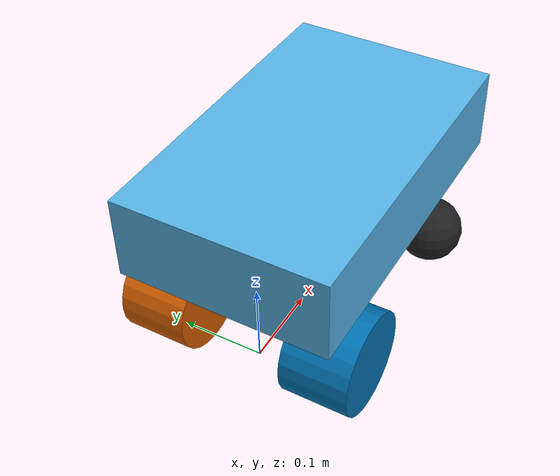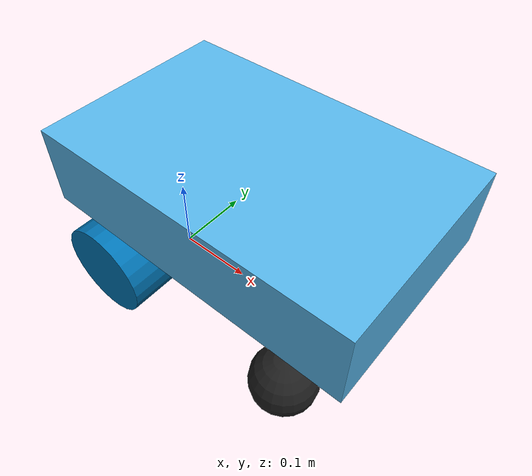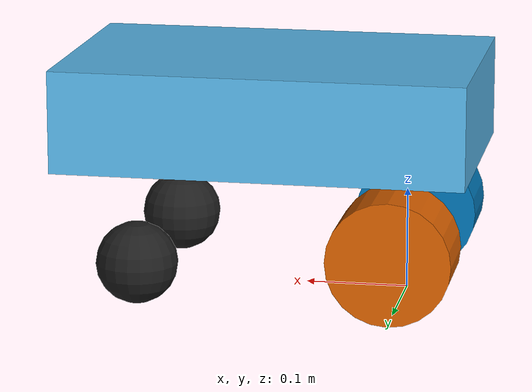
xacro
<?xml version="1.0"?>
<robot xmlns:xacro="http://www.ros.org/wiki/xacro" name="rtklawnmower">

    <!-- base_footprint is a fictitious link(frame) that is on the ground right below base_link origin -->
    <link name="base_footprint" />
    <joint name="base_footprint_joint" type="fixed">
      <parent link="base_footprint"/>
      <child link="base_link" />
      <origin xyz="0 0 0.06" rpy="0 0 0" />
    </joint>

    <!-- chassis is in base_link-->
    <xacro:include filename="$(find rtklm_description)/urdf/chassis.xacro" />
    <xacro:chassis length="0.40" width="0.25" height="0.10" mass="4" offset="0.13 0.00 0.12" />

    <!-- IMU -->
    <xacro:include filename="$(find rtklm_description)/urdf/imu.xacro" />
    <xacro:imu length="0.03" width="0.02" height="0.01" mass="0.01" joint_offset="0.00 0.00 0.08" />

    <!-- GPS -->
    <xacro:include filename="$(find rtklm_description)/urdf/gps.xacro" />
    <xacro:gps length="0.05" width="0.05" height="0.02" mass="0.05" joint_offset="0.22 0.00 0.12" />

    <!-- differential drive wheels -->
    <xacro:include filename="$(find rtklm_description)/urdf/wheel.xacro" />
    <xacro:wheel prefix="right" radius="0.06" length="0.08" mass="0.5" joint_offset="0.0 -0.1 0.0" />
    <xacro:wheel prefix="left"  radius="0.06" length="0.08" mass="0.5" joint_offset="0.0  0.1 0.0" />

    <!-- caster wheels -->
    <xacro:include filename="$(find rtklm_description)/urdf/casterwheel.xacro" />
    <xacro:casterwheel prefix="right" radius="0.04" mass="0.1" joint_offset="0.25 -0.10 -0.02" />
    <xacro:casterwheel prefix="left"  radius="0.04" mass="0.1" joint_offset="0.25  0.10 -0.02" />

</robot>

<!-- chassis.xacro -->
<robot xmlns:xacro="http://www.ros.org/wiki/xacro" name="rtklawnmower">

  <xacro:macro name="chassis" params="length width height mass offset">
    <link name="base_link">
        <visual>
            <origin xyz="${offset}" rpy="0 0 0"/>
            <geometry>
                <box size="${length} ${width} ${height}"/>
            </geometry>
        </visual>
        <collision>
            <origin xyz="${offset}" rpy="0 0 0"/>
            <geometry>
                <box size="${length} ${width} ${height}"/>
            </geometry>
        </collision>
        <inertial>
            <origin xyz="${offset}" rpy="0 0 0"/>
            <mass value="${mass}"/>
            <inertia ixx="${(1/12) * mass * (width*width + height*height)}" ixy="0.0" ixz="0.0"
                     iyy="${(1/12) * mass * (length*length + height*height)}" iyz="0.0"
                     izz="${(1/12) * mass * (length*length + width*width)}" />
        </inertial>
    </link>

  </xacro:macro>
</robot>

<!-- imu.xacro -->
<robot xmlns:xacro="http://www.ros.org/wiki/xacro" name="rtklawnmower">
  <xacro:macro name="imu" params="length width height mass joint_offset">
    <link name="imu_link">
        <visual>
            <origin xyz="0 0 0" rpy="0 0 0"/>
            <geometry>
                <box size="${length} ${width} ${height}"/>
            </geometry>
        </visual>
        <collision>
            <origin xyz="0 0 0" rpy="0 0 0"/>
            <geometry>
                <box size="${length} ${width} ${height}"/>
            </geometry>
        </collision>
        <inertial>
            <origin xyz="0 0 0" rpy="0 0 0"/>
            <mass value="${mass}"/>
            <inertia ixx="${(1/12) * mass * (width*width + height*height)}" ixy="0.0" ixz="0.0"
                     iyy="${(1/12) * mass * (length*length + height*height)}" iyz="0.0"
                     izz="${(1/12) * mass * (length*length + width*width)}" />
        </inertial>
    </link>

    <joint name="imu_joint" type="fixed">
        <origin xyz="${joint_offset}" rpy="0 0 0"/>
        <parent link="base_link"/>
        <child link="imu_link"/>
    </joint>

  </xacro:macro>
</robot>

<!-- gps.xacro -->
<robot xmlns:xacro="http://www.ros.org/wiki/xacro" name="rtklawnmower">
  <xacro:macro name="gps" params="length width height mass joint_offset">
    <link name="gps_link">
        <visual>
            <origin xyz="0 0 0" rpy="0 0 0"/>
            <geometry>
                <box size="${length} ${width} ${height}"/>
            </geometry>
        </visual>
        <collision>
            <origin xyz="0 0 0" rpy="0 0 0"/>
            <geometry>
                <box size="${length} ${width} ${height}"/>
            </geometry>
        </collision>
        <inertial>
            <origin xyz="0 0 0" rpy="0 0 0"/>
            <mass value="${mass}"/>
            <inertia ixx="${(1/12) * mass * (width*width + height*height)}" ixy="0.0" ixz="0.0"
                     iyy="${(1/12) * mass * (length*length + height*height)}" iyz="0.0"
                     izz="${(1/12) * mass * (length*length + width*width)}" />
        </inertial>
    </link>

    <joint name="gps_joint" type="fixed">
        <origin xyz="${joint_offset}" rpy="0 0 0"/>
        <parent link="base_link"/>
        <child link="gps_link"/>
    </joint>

  </xacro:macro>
</robot>

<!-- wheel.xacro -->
<robot xmlns:xacro="http://www.ros.org/wiki/xacro" name="rtklawnmower">
  <xacro:macro name="wheel" params="prefix radius length mass joint_offset">

    <link name="${prefix}_wheel">
        <visual>
            <origin xyz="0 0 0" rpy="${pi/2} 0 0"/>
            <geometry>
                <cylinder length="${length}" radius="${radius}"/>
            </geometry>
        </visual>
        <collision>
            <origin xyz="0 0 0" rpy="${pi/2} 0 0"/>
            <geometry>
                <cylinder length="${length}" radius="${radius}"/>
            </geometry>
        </collision>
        <inertial>
            <origin xyz="0 0 0" rpy="${pi/2} 0 0"/>
            <mass value="${mass}"/>
            <inertia ixx="${(1/12) * mass * (3*radius*radius + length*length)}" ixy="0.0" ixz="0.0"
                     iyy="${(1/12) * mass * (3*radius*radius + length*length)}" iyz="0.0"
                     izz="${(1/2)  * mass * (radius*radius)}" />
        </inertial>
    </link>

    <joint name="${prefix}_wheel_joint" type="continuous">
        <axis xyz="0 1 0"/>
        <parent link="base_link"/>
        <child link="${prefix}_wheel"/>
        <origin xyz="${joint_offset}" rpy="0 0 0"/>
        <limit effort="100" velocity="100"/>
    </joint>

  </xacro:macro>
</robot>

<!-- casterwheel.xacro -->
<robot xmlns:xacro="http://www.ros.org/wiki/xacro" name="rtklawnmower">
  <xacro:macro name="casterwheel" params="prefix radius mass joint_offset">

    <link name="${prefix}_casterwheel">
        <visual>
            <origin xyz="0 0 0" rpy="0 0 0"/>
            <geometry>
                <sphere radius="${radius}"/>
            </geometry>
        </visual>
        <collision>
            <origin xyz="0 0 0" rpy="0 0 0"/>
            <geometry>
                <sphere radius="${radius}"/>
            </geometry>
        </collision>
        <inertial>
            <origin xyz="0 0 0" rpy="0 0 0"/>
            <mass value="${mass}"/>
            <inertia ixx="${(2/5) * mass * (radius*radius)}" ixy="0.0" ixz="0.0"
                     iyy="${(2/5) * mass * (radius*radius)}" iyz="0.0"
                     izz="${(2/5) * mass * (radius*radius)}" />
        </inertial>
    </link>

    <joint name="${prefix}_casterwheel_joint" type="fixed">
        <parent link="base_link"/>
        <child link="${prefix}_casterwheel"/>
        <origin xyz="${joint_offset}" rpy="0 0 0"/>
    </joint>

    <gazebo reference="${prefix}_casterwheel">
        <mu1>0.0</mu1>
        <mu2>0.0</mu2>
        <material>Gazebo/FlatBlack</material>
    </gazebo>

  </xacro:macro>
</robot>
